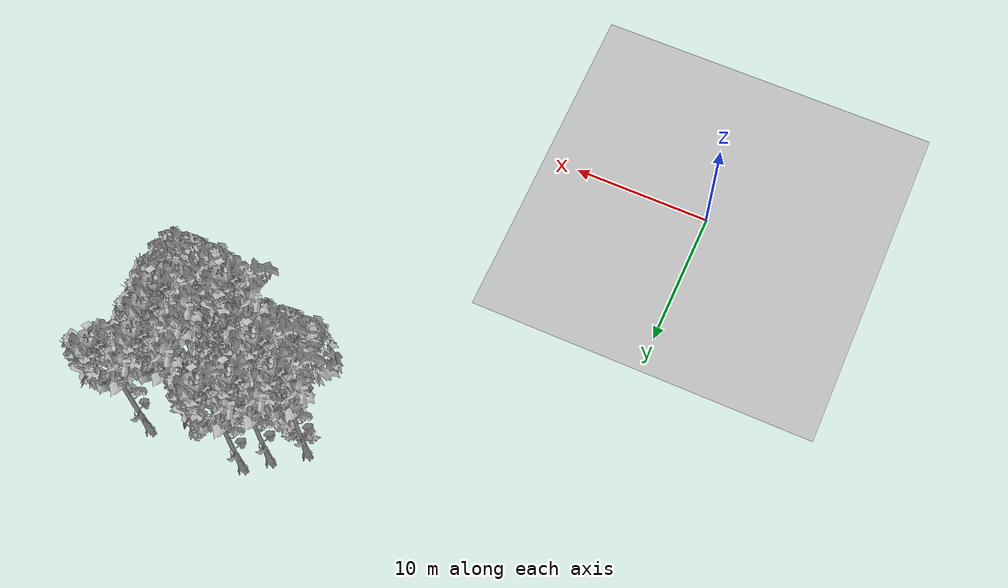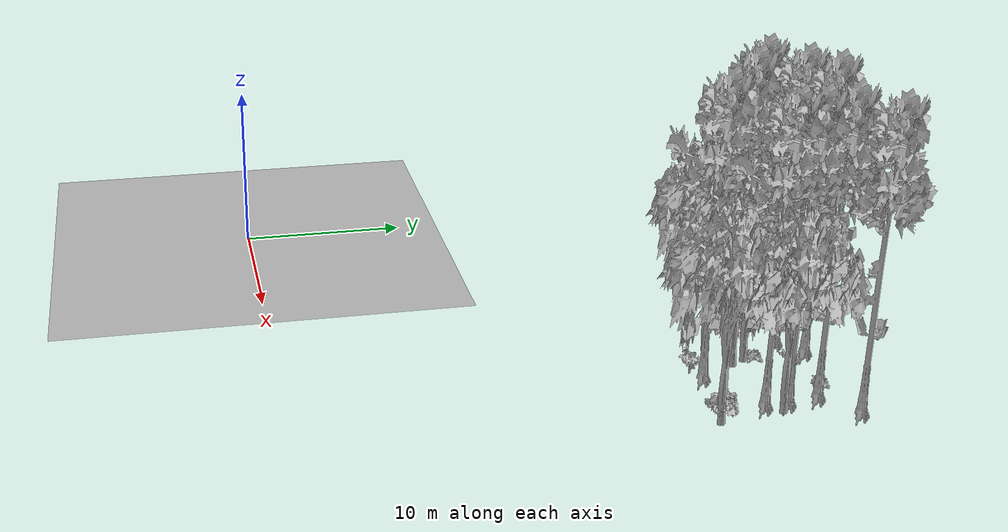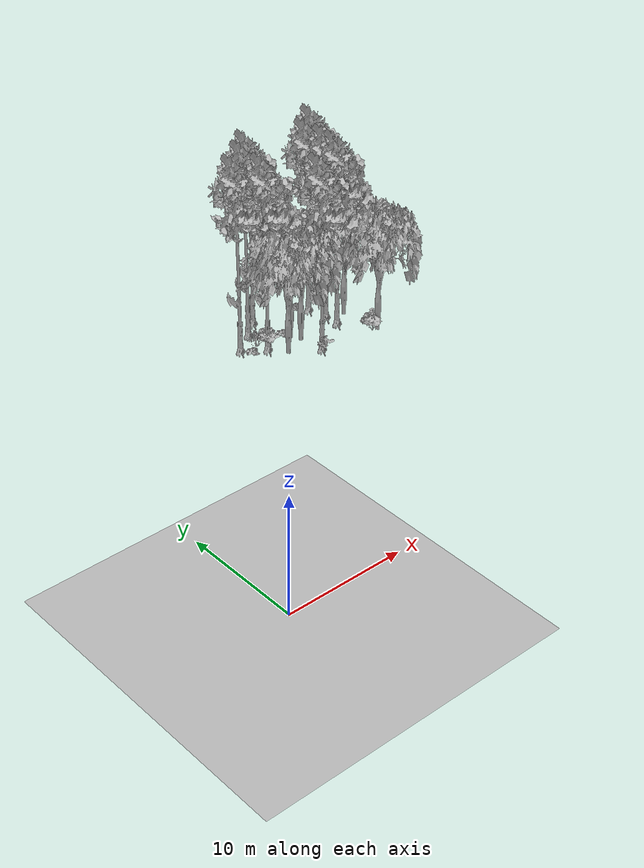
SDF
<sdf version="1.7">
 <world name="default">
  <model name="ground_plane">
   <static>1</static>
   <link name="link">
    <collision name="collision">
     <pose>-50 0 0 0 -0 0</pose>
     <geometry><plane><normal>0 0 1</normal><size>80 80</size></plane></geometry>
     <surface><contact><ode><min_depth>0.01</min_depth><max_vel>0</max_vel></ode></contact></surface>
    </collision>
    <visual name="grass">
     <cast_shadows>0</cast_shadows>
     <geometry>
      <mesh>
       <scale>0.46714285714285714 0.46714285714285714 0.1</scale>
       <uri>file://grass_plane/meshes/grass_plane.dae</uri>
      </mesh>
     </geometry>
    </visual>
   </link>
  </model>
  <model name="Tree 14">
   <static>1</static>
   <pose>20.565288307963478 24.076155257833577 0 1.57079 -0 0</pose>
   <link name="link">
    <collision name="collision">
     <geometry><mesh><scale>3.5 5 3.5</scale><uri>model://tree_2/meshes/tree_2.obj</uri></mesh></geometry>
    </collision>
    <visual name="visual">
     <geometry><mesh><scale>3.5 5 3.5</scale><uri>model://tree_2/meshes/tree_2.obj</uri></mesh></geometry>
    </visual>
   </link>
  </model>
  <model name="Tree 82">
   <static>1</static>
   <pose>28.067423993450006 25.66008638426902 0 1.57079 -0 0</pose>
   <link name="link">
    <collision name="collision">
     <geometry><mesh><scale>3.5 5 3.5</scale><uri>model://tree_2/meshes/tree_2.obj</uri></mesh></geometry>
    </collision>
    <visual name="visual">
     <geometry><mesh><scale>3.5 5 3.5</scale><uri>model://tree_2/meshes/tree_2.obj</uri></mesh></geometry>
    </visual>
   </link>
  </model>
  <model name="Tree 192">
   <static>1</static>
   <pose>22.657566544104192 24.929629417712704 0 1.57079 -0 0</pose>
   <link name="link">
    <collision name="collision">
     <geometry><mesh><scale>3.5 5 3.5</scale><uri>model://tree_2/meshes/tree_2.obj</uri></mesh></geometry>
    </collision>
    <visual name="visual">
     <geometry><mesh><scale>3.5 5 3.5</scale><uri>model://tree_2/meshes/tree_2.obj</uri></mesh></geometry>
    </visual>
   </link>
  </model>
  <model name="Tree 237">
   <static>1</static>
   <pose>28.56715372281616 29.917076251841166 0 1.57079 -0 0</pose>
   <link name="link">
    <collision name="collision">
     <geometry><mesh><scale>3.5 5 3.5</scale><uri>model://tree_9/meshes/tree_9.obj</uri></mesh></geometry>
    </collision>
    <visual name="visual">
     <geometry><mesh><scale>3.5 5 3.5</scale><uri>model://tree_9/meshes/tree_9.obj</uri></mesh></geometry>
    </visual>
   </link>
  </model>
  <model name="Tree 268">
   <static>1</static>
   <pose>26.5476714101748 28.355618630336537 0 1.57079 -0 0</pose>
   <link name="link">
    <collision name="collision">
     <geometry><mesh><scale>3.5 5 3.5</scale><uri>model://tree_9/meshes/tree_9.obj</uri></mesh></geometry>
    </collision>
    <visual name="visual">
     <geometry><mesh><scale>3.5 5 3.5</scale><uri>model://tree_9/meshes/tree_9.obj</uri></mesh></geometry>
    </visual>
   </link>
  </model>
  <model name="Tree 281">
   <static>1</static>
   <pose>19.93804927887956 25.860006312937102 0 1.57079 -0 0</pose>
   <link name="link">
    <collision name="collision">
     <geometry><mesh><scale>3.5 5 3.5</scale><uri>model://tree_9/meshes/tree_9.obj</uri></mesh></geometry>
    </collision>
    <visual name="visual">
     <geometry><mesh><scale>3.5 5 3.5</scale><uri>model://tree_9/meshes/tree_9.obj</uri></mesh></geometry>
    </visual>
   </link>
  </model>
  <model name="Tree 295">
   <static>1</static>
   <pose>23.351771116682244 23.025310635190976 0 1.57079 -0 0</pose>
   <link name="link">
    <collision name="collision">
     <geometry><mesh><scale>3.5 5 3.5</scale><uri>model://tree_9/meshes/tree_9.obj</uri></mesh></geometry>
    </collision>
    <visual name="visual">
     <geometry><mesh><scale>3.5 5 3.5</scale><uri>model://tree_9/meshes/tree_9.obj</uri></mesh></geometry>
    </visual>
   </link>
  </model>
  <model name="Tree 297">
   <static>1</static>
   <pose>26.9405692203798 25.17778573789306 0 1.57079 -0 0</pose>
   <link name="link">
    <collision name="collision">
     <geometry><mesh><scale>3.5 5 3.5</scale><uri>model://tree_9/meshes/tree_9.obj</uri></mesh></geometry>
    </collision>
    <visual name="visual">
     <geometry><mesh><scale>3.5 5 3.5</scale><uri>model://tree_9/meshes/tree_9.obj</uri></mesh></geometry>
    </visual>
   </link>
  </model>
  <model name="Tree 391">
   <static>1</static>
   <pose>18.083563577540048 27.14127772730633 0 1.57079 -0 0</pose>
   <link name="link">
    <collision name="collision">
     <geometry><mesh><scale>3.5 5 3.5</scale><uri>model://tree_9/meshes/tree_9.obj</uri></mesh></geometry>
    </collision>
    <visual name="visual">
     <geometry><mesh><scale>3.5 5 3.5</scale><uri>model://tree_9/meshes/tree_9.obj</uri></mesh></geometry>
    </visual>
   </link>
  </model>
  <model name="Tree 405">
   <static>1</static>
   <pose>26.890794421275928 26.529667579430566 0 1.57079 -0 0</pose>
   <link name="link">
    <collision name="collision">
     <geometry><mesh><scale>3.5 5 3.5</scale><uri>model://tree_9/meshes/tree_9.obj</uri></mesh></geometry>
    </collision>
    <visual name="visual">
     <geometry><mesh><scale>3.5 5 3.5</scale><uri>model://tree_9/meshes/tree_9.obj</uri></mesh></geometry>
    </visual>
   </link>
  </model>
  <model name="Tree 412">
   <static>1</static>
   <pose>28.56054353278428 22.02431795982237 0 1.57079 -0 0</pose>
   <link name="link">
    <collision name="collision">
     <geometry><mesh><scale>3.5 5 3.5</scale><uri>model://tree_2/meshes/tree_2.obj</uri></mesh></geometry>
    </collision>
    <visual name="visual">
     <geometry><mesh><scale>3.5 5 3.5</scale><uri>model://tree_2/meshes/tree_2.obj</uri></mesh></geometry>
    </visual>
   </link>
  </model>
  <model name="Tree 484">
   <static>1</static>
   <pose>21.57286870252853 29.76483314385247 0 1.57079 -0 0</pose>
   <link name="link">
    <collision name="collision">
     <geometry><mesh><scale>3.5 5 3.5</scale><uri>model://tree_9/meshes/tree_9.obj</uri></mesh></geometry>
    </collision>
    <visual name="visual">
     <geometry><mesh><scale>3.5 5 3.5</scale><uri>model://tree_9/meshes/tree_9.obj</uri></mesh></geometry>
    </visual>
   </link>
  </model>
  <model name="Tree 512">
   <static>1</static>
   <pose>22.21085911633839 25.73287318675311 0 1.57079 -0 0</pose>
   <link name="link">
    <collision name="collision">
     <geometry><mesh><scale>3.5 5 3.5</scale><uri>model://tree_2/meshes/tree_2.obj</uri></mesh></geometry>
    </collision>
    <visual name="visual">
     <geometry><mesh><scale>3.5 5 3.5</scale><uri>model://tree_2/meshes/tree_2.obj</uri></mesh></geometry>
    </visual>
   </link>
  </model>
  <model name="Tree 634">
   <static>1</static>
   <pose>20.11250707728751 28.590091772779388 0 1.57079 -0 0</pose>
   <link name="link">
    <collision name="collision">
     <geometry><mesh><scale>3.5 5 3.5</scale><uri>model://tree_9/meshes/tree_9.obj</uri></mesh></geometry>
    </collision>
    <visual name="visual">
     <geometry><mesh><scale>3.5 5 3.5</scale><uri>model://tree_9/meshes/tree_9.obj</uri></mesh></geometry>
    </visual>
   </link>
  </model>
  <model name="Bush 20">
   <static>1</static>
   <pose>24.148697347781166 27.833806075606176 0 1.57079 -0 0</pose>
   <link name="link">
    <collision name="collision">
     <geometry><mesh><scale>2 2 2</scale><uri>model://bush_5/meshes/bush_5.obj</uri></mesh></geometry>
     <surface><contact><collide_without_contact>false</collide_without_contact></contact></surface>
    </collision>
    <visual name="visual">
     <geometry><mesh><scale>2 2 2</scale><uri>model://bush_5/meshes/bush_5.obj</uri></mesh></geometry>
    </visual>
   </link>
  </model>
  <model name="Bush 95">
   <static>1</static>
   <pose>28.1614960495707 22.123466460383796 0 1.57079 -0 0</pose>
   <link name="link">
    <collision name="collision">
     <geometry><mesh><scale>2 2 2</scale><uri>model://bush_1/meshes/bush_1.obj</uri></mesh></geometry>
     <surface><contact><collide_without_contact>false</collide_without_contact></contact></surface>
    </collision>
    <visual name="visual">
     <geometry><mesh><scale>2 2 2</scale><uri>model://bush_1/meshes/bush_1.obj</uri></mesh></geometry>
    </visual>
   </link>
  </model>
  <model name="Bush 287">
   <static>1</static>
   <pose>18.37768807858434 25.949532751237555 0 1.57079 -0 0</pose>
   <link name="link">
    <collision name="collision">
     <geometry><mesh><scale>2 2 2</scale><uri>model://bush_2/meshes/bush_2.obj</uri></mesh></geometry>
     <surface><contact><collide_without_contact>false</collide_without_contact></contact></surface>
    </collision>
    <visual name="visual">
     <geometry><mesh><scale>2 2 2</scale><uri>model://bush_2/meshes/bush_2.obj</uri></mesh></geometry>
    </visual>
   </link>
  </model>
  <model name="Bush 298">
   <static>1</static>
   <pose>19.339821215476803 26.530860968195014 0 1.57079 -0 0</pose>
   <link name="link">
    <collision name="collision">
     <geometry><mesh><scale>2 2 2</scale><uri>model://bush_4/meshes/bush_4.obj</uri></mesh></geometry>
     <surface><contact><collide_without_contact>false</collide_without_contact></contact></surface>
    </collision>
    <visual name="visual">
     <geometry><mesh><scale>2 2 2</scale><uri>model://bush_4/meshes/bush_4.obj</uri></mesh></geometry>
    </visual>
   </link>
  </model>
  <model name="Bush 332">
   <static>1</static>
   <pose>20.196404874827536 25.745786366409163 0 1.57079 -0 0</pose>
   <link name="link">
    <collision name="collision">
     <geometry><mesh><scale>2 2 2</scale><uri>model://bush_0/meshes/bush_0.obj</uri></mesh></geometry>
     <surface><contact><collide_without_contact>false</collide_without_contact></contact></surface>
    </collision>
    <visual name="visual">
     <geometry><mesh><scale>2 2 2</scale><uri>model://bush_0/meshes/bush_0.obj</uri></mesh></geometry>
    </visual>
   </link>
  </model>
  <model name="Bush 394">
   <static>1</static>
   <pose>25.498220110367598 28.893782759406264 0 1.57079 -0 0</pose>
   <link name="link">
    <collision name="collision">
     <geometry><mesh><scale>2 2 2</scale><uri>model://bush_2/meshes/bush_2.obj</uri></mesh></geometry>
     <surface><contact><collide_without_contact>false</collide_without_contact></contact></surface>
    </collision>
    <visual name="visual">
     <geometry><mesh><scale>2 2 2</scale><uri>model://bush_2/meshes/bush_2.obj</uri></mesh></geometry>
    </visual>
   </link>
  </model>
  <model name="Bush 544">
   <static>1</static>
   <pose>23.101125549160905 22.336619273579792 0 1.57079 -0 0</pose>
   <link name="link">
    <collision name="collision">
     <geometry><mesh><scale>2 2 2</scale><uri>model://bush_0/meshes/bush_0.obj</uri></mesh></geometry>
     <surface><contact><collide_without_contact>false</collide_without_contact></contact></surface>
    </collision>
    <visual name="visual">
     <geometry><mesh><scale>2 2 2</scale><uri>model://bush_0/meshes/bush_0.obj</uri></mesh></geometry>
    </visual>
   </link>
  </model>
  <model name="Bush 550">
   <static>1</static>
   <pose>21.976001941662467 26.465558392848635 0 1.57079 -0 0</pose>
   <link name="link">
    <collision name="collision">
     <geometry><mesh><scale>2 2 2</scale><uri>model://bush_2/meshes/bush_2.obj</uri></mesh></geometry>
     <surface><contact><collide_without_contact>false</collide_without_contact></contact></surface>
    </collision>
    <visual name="visual">
     <geometry><mesh><scale>2 2 2</scale><uri>model://bush_2/meshes/bush_2.obj</uri></mesh></geometry>
    </visual>
   </link>
  </model>
  <model name="Bush 636">
   <static>1</static>
   <pose>20.010408976826426 25.933745841993982 0 1.57079 -0 0</pose>
   <link name="link">
    <collision name="collision">
     <geometry><mesh><scale>2 2 2</scale><uri>model://bush_1/meshes/bush_1.obj</uri></mesh></geometry>
     <surface><contact><collide_without_contact>false</collide_without_contact></contact></surface>
    </collision>
    <visual name="visual">
     <geometry><mesh><scale>2 2 2</scale><uri>model://bush_1/meshes/bush_1.obj</uri></mesh></geometry>
    </visual>
   </link>
  </model>
 </world>
</sdf>
